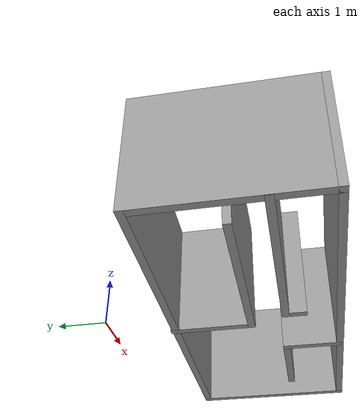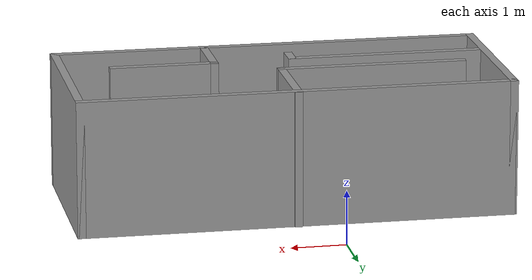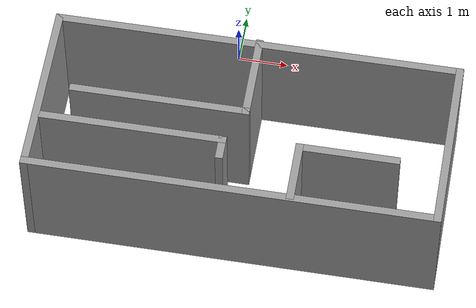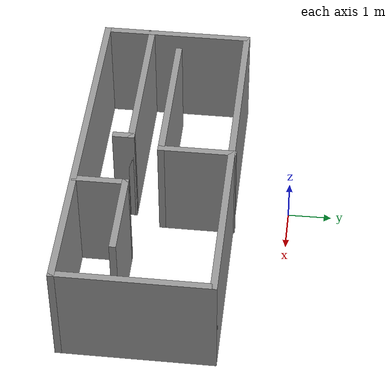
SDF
<?xml version='1.0'?>
<sdf version='1.7'>
  <model name='room'>
    <pose>0.605 -2.3675 0 0 -0 0</pose>
    <link name='Wall_0'>
      <collision name='Wall_0_Collision'>
        <geometry>
          <box>
            <size>8 0.15 2.5</size>
          </box>
        </geometry>
        <pose>0 0 1.25 0 -0 0</pose>
      </collision>
      <visual name='Wall_0_Visual'>
        <pose>0 0 1.25 0 -0 0</pose>
        <geometry>
          <box>
            <size>8 0.15 2.5</size>
          </box>
        </geometry>
        <material>
          <script>
            <uri>file://media/materials/scripts/gazebo.material</uri>
            <name>Gazebo/Grey</name>
          </script>
          <ambient>1 1 1 1</ambient>
        </material>
        <meta>
          <layer>0</layer>
        </meta>
      </visual>
      <pose>-0 1.0575 0 0 -0 0</pose>
    </link>
    <link name='Wall_1'>
      <collision name='Wall_1_Collision'>
        <geometry>
          <box>
            <size>3.5 0.15 2.5</size>
          </box>
        </geometry>
        <pose>0 0 1.25 0 -0 0</pose>
      </collision>
      <visual name='Wall_1_Visual'>
        <pose>0 0 1.25 0 -0 0</pose>
        <geometry>
          <box>
            <size>3.5 0.15 2.5</size>
          </box>
        </geometry>
        <material>
          <script>
            <uri>file://media/materials/scripts/gazebo.material</uri>
            <name>Gazebo/Grey</name>
          </script>
          <ambient>1 1 1 1</ambient>
        </material>
        <meta>
          <layer>0</layer>
        </meta>
      </visual>
      <pose>3.925 -0.6175 0 0 -0 -1.5708</pose>
    </link>
    <link name='Wall_10'>
      <collision name='Wall_10_Collision'>
        <geometry>
          <box>
            <size>3.75 0.15 2.5</size>
          </box>
        </geometry>
        <pose>0 0 1.25 0 -0 0</pose>
      </collision>
      <visual name='Wall_10_Visual'>
        <pose>0 0 1.25 0 -0 0</pose>
        <geometry>
          <box>
            <size>3.75 0.15 2.5</size>
          </box>
        </geometry>
        <material>
          <script>
            <uri>file://media/materials/scripts/gazebo.material</uri>
            <name>Gazebo/Grey</name>
          </script>
          <ambient>1 1 1 1</ambient>
        </material>
        <meta>
          <layer>0</layer>
        </meta>
      </visual>
      <pose>-2.115 -1.2225 0 0 -0 0</pose>
    </link>
    <link name='Wall_11'>
      <collision name='Wall_11_Collision'>
        <geometry>
          <box>
            <size>0.5 0.15 2.5</size>
          </box>
        </geometry>
        <pose>0 0 1.25 0 -0 0</pose>
      </collision>
      <visual name='Wall_11_Visual'>
        <pose>0 0 1.25 0 -0 0</pose>
        <geometry>
          <box>
            <size>0.5 0.15 2.5</size>
          </box>
        </geometry>
        <material>
          <script>
            <uri>file://media/materials/scripts/gazebo.material</uri>
            <name>Gazebo/Grey</name>
          </script>
          <ambient>1 1 1 1</ambient>
        </material>
        <meta>
          <layer>0</layer>
        </meta>
      </visual>
      <pose>-0.315 -1.3975 0 0 -0 -1.5708</pose>
    </link>
    <link name='Wall_13'>
      <collision name='Wall_13_Collision'>
        <geometry>
          <box>
            <size>1.25 0.15 2.5</size>
          </box>
        </geometry>
        <pose>0 0 1.25 0 -0 0</pose>
      </collision>
      <visual name='Wall_13_Visual'>
        <pose>0 0 1.25 0 -0 0</pose>
        <geometry>
          <box>
            <size>1.25 0.15 2.5</size>
          </box>
        </geometry>
        <material>
          <script>
            <uri>file://media/materials/scripts/gazebo.material</uri>
            <name>Gazebo/Grey</name>
          </script>
          <ambient>1 1 1 1</ambient>
        </material>
        <meta>
          <layer>0</layer>
        </meta>
      </visual>
      <pose>1.145 -1.7025 0 0 -0 1.5708</pose>
    </link>
    <link name='Wall_14'>
      <collision name='Wall_14_Collision'>
        <geometry>
          <box>
            <size>2 0.15 2.5</size>
          </box>
        </geometry>
        <pose>0 0 1.25 0 -0 0</pose>
      </collision>
      <visual name='Wall_14_Visual'>
        <pose>0 0 1.25 0 -0 0</pose>
        <geometry>
          <box>
            <size>2 0.15 2.5</size>
          </box>
        </geometry>
        <material>
          <script>
            <uri>file://media/materials/scripts/gazebo.material</uri>
            <name>Gazebo/Grey</name>
          </script>
          <ambient>1 1 1 1</ambient>
        </material>
        <meta>
          <layer>0</layer>
        </meta>
      </visual>
      <pose>2.07 -1.1525 0 0 -0 0</pose>
    </link>
    <link name='Wall_2'>
      <collision name='Wall_2_Collision'>
        <geometry>
          <box>
            <size>8 0.15 2.5</size>
          </box>
        </geometry>
        <pose>0 0 1.25 0 -0 0</pose>
      </collision>
      <visual name='Wall_2_Visual'>
        <pose>0 0 1.25 0 -0 0</pose>
        <geometry>
          <box>
            <size>8 0.15 2.5</size>
          </box>
        </geometry>
        <material>
          <script>
            <uri>file://media/materials/scripts/gazebo.material</uri>
            <name>Gazebo/Grey</name>
          </script>
          <ambient>1 1 1 1</ambient>
        </material>
        <meta>
          <layer>0</layer>
        </meta>
      </visual>
      <pose>-0 -2.2925 0 0 -0 3.14159</pose>
    </link>
    <link name='Wall_3'>
      <collision name='Wall_3_Collision'>
        <geometry>
          <box>
            <size>3.5 0.15 2.5</size>
          </box>
        </geometry>
        <pose>0 0 1.25 0 -0 0</pose>
      </collision>
      <visual name='Wall_3_Visual'>
        <pose>0 0 1.25 0 -0 0</pose>
        <geometry>
          <box>
            <size>3.5 0.15 2.5</size>
          </box>
        </geometry>
        <material>
          <script>
            <uri>file://media/materials/scripts/gazebo.material</uri>
            <name>Gazebo/Grey</name>
          </script>
          <ambient>1 1 1 1</ambient>
        </material>
        <meta>
          <layer>0</layer>
        </meta>
      </visual>
      <pose>-3.925 -0.6175 0 0 -0 1.5708</pose>
    </link>
    <link name='Wall_5'>
      <collision name='Wall_5_Collision'>
        <geometry>
          <box>
            <size>1.75 0.15 2.5</size>
          </box>
        </geometry>
        <pose>0 0 1.25 0 -0 0</pose>
      </collision>
      <visual name='Wall_5_Visual'>
        <pose>0 0 1.25 0 -0 0</pose>
        <geometry>
          <box>
            <size>1.75 0.15 2.5</size>
          </box>
        </geometry>
        <material>
          <script>
            <uri>file://media/materials/scripts/gazebo.material</uri>
            <name>Gazebo/Grey</name>
          </script>
          <ambient>1 1 1 1</ambient>
        </material>
        <meta>
          <layer>0</layer>
        </meta>
      </visual>
      <pose>0.015 0.2875 0 0 -0 -1.5708</pose>
    </link>
    <link name='Wall_8'>
      <collision name='Wall_8_Collision'>
        <geometry>
          <box>
            <size>3.5 0.15 2.5</size>
          </box>
        </geometry>
        <pose>0 0 1.25 0 -0 0</pose>
      </collision>
      <visual name='Wall_8_Visual'>
        <pose>0 0 1.25 0 -0 0</pose>
        <geometry>
          <box>
            <size>3.5 0.15 2.5</size>
          </box>
        </geometry>
        <material>
          <script>
            <uri>file://media/materials/scripts/gazebo.material</uri>
            <name>Gazebo/Grey</name>
          </script>
          <ambient>1 1 1 1</ambient>
        </material>
        <meta>
          <layer>0</layer>
        </meta>
      </visual>
      <pose>-1.66 -0.5125 0 0 -0 3.14159</pose>
    </link>
    <static>1</static>
  </model>
</sdf>
